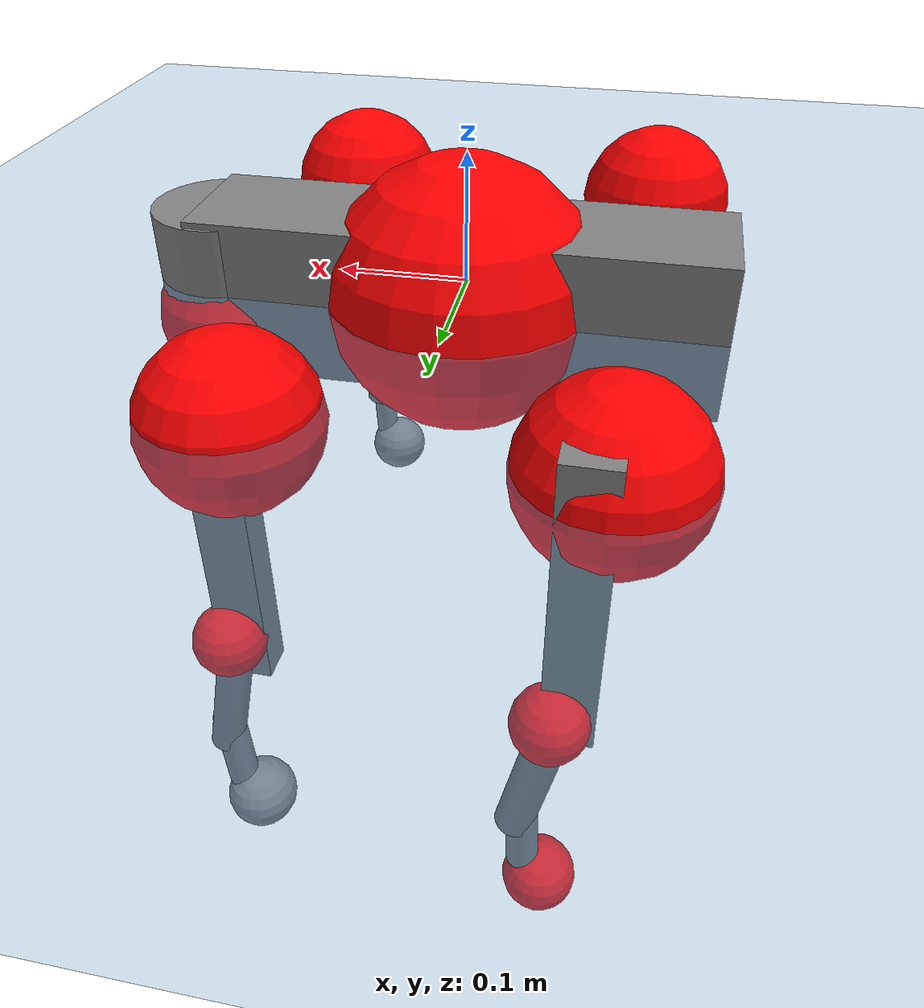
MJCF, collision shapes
<mujoco model="go2">
  <compiler angle="radian" assetdir="assets" balanceinertia="true" inertiafromgeom="false"/>

  <option timestep="0.005" density="1.2" viscosity="2e-05"/>

  <size nkey="1"/>

  <visual>
    <quality shadowsize="8192"/>
    <map shadowclip="0.5"/>
  </visual>

  <default>
    <default class="/">
      <geom contype="0" conaffinity="0" group="1" solref="-1000 -80"/>
      <site size="0.01 0.005 0.005" group="5"/>
      <general forcelimited="true" biastype="affine" gainprm="20" biasprm="0 -20 -0.5"/>
      <default class="go2">
        <joint armature="0.01" damping="0.01" frictionloss="0.2"/>
        <geom condim="1" margin="0.001"/>
        <default class="visual">
          <geom type="mesh" group="2"/>
        </default>
        <default class="collision">
          <geom group="3"/>
          <default class="foot">
            <geom size="0.022 0 0" condim="6" priority="1" friction="0.8 0.02 0.01" solimp="0.015 1 0.022"/>
          </default>
        </default>
        <default class="reward_collision_sphere">
          <geom group="5" rgba="1 0 0 1"/>
        </default>
      </default>
    </default>
  </default>

  <asset>
    <texture type="skybox" colorspace="auto" name="//unnamed_texture_0" builtin="gradient" rgb1="0.95 0.95 0.95" rgb2="0.95 0.95 0.95" width="100" height="600"/>
    <texture type="2d" colorspace="auto" name="texplane" builtin="checker" rgb1="0.345 0.575 0.748" rgb2="0.345 0.575 0.748" markrgb="1 1 1" width="512" height="512"/>
    <material name="MatPlane" class="/" texture="texplane" texuniform="true" texrepeat="2 2" specular="0.9"/>
    <material name="metal" class="/" rgba="0.9 0.95 0.95 1"/>
    <material name="black" class="/" rgba="0 0 0 1"/>
    <material name="white" class="/"/>
    <material name="gray" class="/" rgba="0.671705 0.692426 0.77427 1"/>
    <mesh name="base_0" class="/" file="base_0.obj"/>
    <mesh name="base_1" class="/" file="base_1.obj"/>
    <mesh name="base_2" class="/" file="base_2.obj"/>
    <mesh name="base_3" class="/" file="base_3.obj"/>
    <mesh name="base_4" class="/" file="base_4.obj"/>
    <mesh name="hip_0" class="/" file="hip_0.obj"/>
    <mesh name="hip_1" class="/" file="hip_1.obj"/>
    <mesh name="thigh_0" class="/" file="thigh_0.obj"/>
    <mesh name="thigh_1" class="/" file="thigh_1.obj"/>
    <mesh name="thigh_mirror_0" class="/" file="thigh_mirror_0.obj"/>
    <mesh name="thigh_mirror_1" class="/" file="thigh_mirror_1.obj"/>
    <mesh name="calf_0" class="/" file="calf_0.obj"/>
    <mesh name="calf_1" class="/" file="calf_1.obj"/>
    <mesh name="calf_mirror_0" class="/" file="calf_mirror_0.obj"/>
    <mesh name="calf_mirror_1" class="/" file="calf_mirror_1.obj"/>
    <mesh name="foot" class="/" file="foot.obj"/>
  </asset>

  <worldbody>
    <geom name="floor" class="/" size="100 100 0.125" type="plane" group="0" material="MatPlane"/>
    <light name="toplight_shadow" class="/" pos="0 0 5" dir="0.0990148 0.0990148 -0.990148" type="directional" ambient="0.04 0.04 0.04" diffuse="0.55 0.55 0.55" specular="0.12 0.12 0.12"/>
    <light name="toplight_fill" class="/" pos="0 0 5" dir="0.0990148 0.0990148 -0.990148" type="directional" castshadow="false" ambient="0.04 0.04 0.04" diffuse="0.3 0.3 0.3" specular="0.08 0.08 0.08"/>
    <body name="trunk" childclass="go2" pos="0.000439719 0.0129031 -0.00321821" quat="1 -3.30784e-05 0.000217249 -0.000130387">
      <inertial pos="0.00709323 0.0136581 -0.00213149" quat="-0.0847573 0.695737 -0.0148007 0.713125" mass="8.05114" diaginertia="0.0144298 1.60224 0.0074408"/>
      <joint name="//unnamed_joint_0" type="free" armature="0" damping="0" frictionloss="0"/>
      <geom name="//unnamed_geom_1" class="visual" material="black" mesh="base_0"/>
      <geom name="//unnamed_geom_2" class="visual" material="black" mesh="base_1"/>
      <geom name="//unnamed_geom_3" class="visual" material="black" mesh="base_2"/>
      <geom name="//unnamed_geom_4" class="visual" material="white" mesh="base_3"/>
      <geom name="//unnamed_geom_5" class="visual" material="gray" mesh="base_4"/>
      <geom name="trunk_1" class="collision" size="0.19713 0.0489942 0.0597363" type="box"/>
      <geom name="trunk_2" class="collision" size="0.0524003 0.0471602" pos="0.186634 0 0.00789464" type="cylinder"/>
      <geom name="trunk_3" class="collision" size="0.0492562" pos="0.191873 0 -0.0473678"/>
      <geom name="//unnamed_geom_9" class="reward_collision_sphere" size="0.104801"/>
      <geom name="//unnamed_geom_10" class="reward_collision_sphere" size="0.0628803" pos="0.18336 0 -0.0355259"/>
      <site name="imu" pos="-0.0795743 -0.0508903 0.0978447" size="0.0104801"/>
      <camera name="track" pos="0 -3.39939 0" quat="0.707107 0.707107 0 0" mode="trackcom"/>
      <camera name="ego_camera" pos="0.204315 0 0.0355259" quat="-0.5 -0.5 0.5 0.5"/>
      <body name="FL_hip" pos="0.115314 0.0619133 -0.0148444" quat="0.999978 0.00569956 0.00305861 -0.00163959">
        <inertial pos="0.000824877 0.00377641 -0.00944116" quat="0.485826 0.511791 0.501006 0.501035" mass="0.924001" diaginertia="0.000103978 0.00921457 0.000140519"/>
        <joint name="FL_hip_joint" pos="0 0 0" axis="0.999934 0.000324017 -0.0114438" range="-1.39603 0.852541" armature="0.0123736" damping="0.0727054" frictionloss="0.089321"/>
        <geom name="//unnamed_geom_11" class="visual" material="metal" mesh="hip_0"/>
        <geom name="//unnamed_geom_12" class="visual" material="gray" mesh="hip_1"/>
        <geom name="//unnamed_geom_13" class="collision" size="0.0482082 0.0209601" pos="0 0.135976 0" quat="0.707107 0.707107 0 0" type="cylinder"/>
        <geom name="//unnamed_geom_14" class="reward_collision_sphere" size="0.0628803" pos="0 0.118979 0"/>
        <body name="FL_thigh" pos="-0.000602264 0.145109 0.00514742" quat="0.999982 0.00312944 0.00461654 -0.00217838">
          <inertial pos="-0.0144175 -0.0485402 -0.0301964" quat="0.808954 0.141817 -0.054426 0.567907" mass="1.32186" diaginertia="0.00066593 0.0807033 0.000283613"/>
          <joint name="FL_thigh_joint" pos="0 0 0" axis="-0.0578191 0.997836 -0.0313246" range="-1.7517 3.1797" armature="0.00341372" damping="0" frictionloss="0.128634"/>
          <geom name="//unnamed_geom_15" class="visual" material="metal" mesh="thigh_0"/>
          <geom name="//unnamed_geom_16" class="visual" material="gray" mesh="thigh_1"/>
          <geom name="//unnamed_geom_17" class="collision" size="0.111613 0.0128381 0.0178161" pos="0 0 -0.0840779" quat="0.707107 0 0.707107 0" type="box"/>
          <body name="FL_calf" pos="0.00696833 0.0153935 -0.160437" quat="0.999988 -0.00228967 0.00313626 0.00293014">
            <inertial pos="-0.00707701 -0.000508592 -0.0949466" quat="0.709902 0.00135808 -0.00289487 0.704293" mass="0.289369" diaginertia="0.000206531 0.0165183 1.94758e-05"/>
            <joint name="FL_calf_joint" pos="0 0 0" axis="0.000476561 0.999978 -0.00664828" range="-2.39371 -0.8557" armature="0.0158813" damping="0.0144313" frictionloss="0.208204"/>
            <geom name="//unnamed_geom_18" class="visual" material="gray" mesh="calf_0"/>
            <geom name="//unnamed_geom_19" class="visual" material="black" mesh="calf_1"/>
            <geom name="FL_calf0" class="collision" size="0.0125761 0.0628803" pos="0.00523886 0 -0.0473678" quat="0.994493 0 -0.104807 0" type="cylinder"/>
            <geom name="//unnamed_geom_21" class="collision" size="0.0115281 0.0340602" pos="0.0130971 0 -0.116841" quat="0.999688 0 0.0249974 0" type="cylinder"/>
            <geom name="//unnamed_geom_22" class="visual" pos="0 0 -0.168156" quat="1 0 0 0" material="black" mesh="foot"/>
            <geom name="FL_foot" class="foot" size="0.0265184" pos="-0.00130971 0 -0.168156"/>
            <geom name="//unnamed_geom_24" class="reward_collision_sphere" size="0.0262001"/>
            <geom name="//unnamed_geom_25" class="reward_collision_sphere" size="0.0262001" pos="-0.00130971 0 -0.168156"/>
            <site name="FL_foot" class="foot" pos="-0.00130971 0 -0.168156" size="0.0104801"/>
          </body>
        </body>
      </body>
      <body name="FR_hip" pos="0.125719 -0.0699726 0.00835126" quat="1 9.96748e-05 -0.000814062 -0.000152274">
        <inertial pos="0.00405537 -0.00886789 -0.00583249" quat="0.489034 0.504017 0.507864 0.498886" mass="0.885704" diaginertia="0.000111046 0.00991013 0.000118046"/>
        <joint name="FR_hip_joint" pos="0 0 0" axis="0.99841 0.00710922 -0.0559252" stiffness="0.0366243" range="-1.03063 1.08399" armature="0.00740192" damping="0" frictionloss="0.131982"/>
        <geom name="//unnamed_geom_26" class="visual" pos="0 7.92956e-09 3.40115e-07" quat="4.63268e-05 1 0 0" material="metal" mesh="hip_0"/>
        <geom name="//unnamed_geom_27" class="visual" pos="0 1.28548e-08 -8.41234e-07" quat="4.63268e-05 1 0 0" material="gray" mesh="hip_1"/>
        <geom name="//unnamed_geom_28" class="collision" size="0.0482082 0.0209601" pos="0 -0.135976 0" quat="0.707107 0.707107 0 0" type="cylinder"/>
        <geom name="//unnamed_geom_29" class="reward_collision_sphere" size="0.0628803" pos="0 -0.118979 0"/>
        <body name="FR_thigh" pos="-0.0153765 -0.179251 -0.0119682" quat="0.999989 0.00208686 0.0016648 -0.00378003">
          <inertial pos="0.00683783 0.0548843 -0.0232189" quat="0.550047 -0.029934 0.0328647 0.83395" mass="0.933819" diaginertia="0.000571259 0.0684682 0.000245287"/>
          <joint name="FR_thigh_joint" pos="0 0 0" axis="0.00692699 -0.999956 0.00639431" stiffness="0.0378618" range="-3.17581 1.58187" armature="0.00860246" damping="0" frictionloss="0.216434"/>
          <geom name="//unnamed_geom_30" class="visual" material="metal" mesh="thigh_mirror_0"/>
          <geom name="//unnamed_geom_31" class="visual" material="gray" mesh="thigh_mirror_1"/>
          <geom name="//unnamed_geom_32" class="collision" size="0.111613 0.0128381 0.0178161" pos="0 0 -0.0840779" quat="0.707107 0 0.707107 0" type="box"/>
          <body name="FR_calf" pos="0.0159535 -0.00278732 -0.157434" quat="0.999975 0.00572326 -0.000100084 0.00424512">
            <inertial pos="-0.00361448 0.000867485 -0.123339" quat="0.72322 -0.0334769 0.0360998 0.68886" mass="0.26912" diaginertia="0.000168391 0.02092 1.50053e-05"/>
            <joint name="FR_calf_joint" pos="0 0 0" axis="-0.0619867 -0.996461 0.0567679" stiffness="0.0484973" range="0.751177 2.71189" armature="0.00302254" damping="0" frictionloss="0.357525"/>
            <geom name="//unnamed_geom_33" class="visual" material="gray" mesh="calf_mirror_0"/>
            <geom name="//unnamed_geom_34" class="visual" material="black" mesh="calf_mirror_1"/>
            <geom name="FR_calf0" class="collision" size="0.0136241 0.0628803" pos="0.00654857 0 -0.0473678" quat="0.995004 0 -0.0998334 0" type="cylinder"/>
            <geom name="//unnamed_geom_36" class="collision" size="0.0115281 0.0340602" pos="0.0130971 0 -0.116841" quat="0.999688 0 0.0249974 0" type="cylinder"/>
            <geom name="//unnamed_geom_37" class="visual" pos="0 0 -0.168156" quat="1 0 0 0" material="black" mesh="foot"/>
            <geom name="FR_foot" class="foot" size="0.0292779" pos="-0.00130971 0 -0.168156"/>
            <geom name="//unnamed_geom_39" class="reward_collision_sphere" size="0.0262001"/>
            <geom name="//unnamed_geom_40" class="reward_collision_sphere" size="0.0262001" pos="-0.00130971 0 -0.168156"/>
            <site name="FR_foot" class="foot" pos="-0.00130971 0 -0.168156" size="0.0104801"/>
          </body>
        </body>
      </body>
      <body name="RL_hip" pos="-0.130104 0.0830295 -0.00322878" quat="0.999993 -0.00304148 0.000884863 -0.00184639">
        <inertial pos="0.0028275 0.0169167 -0.00997818" quat="0.477832 0.505513 0.512849 0.503109" mass="0.641111" diaginertia="9.52334e-05 0.0075394 0.000132881"/>
        <joint name="RL_hip_joint" pos="0 0 0" axis="-0.998997 -0.042759 -0.0132718" stiffness="0.0296574" range="-1.1603 1.21211" armature="0.0099625" damping="0.00288502" frictionloss="0.156325"/>
        <geom name="//unnamed_geom_41" class="visual" pos="1.17264e-09 0 2.29864e-07" quat="4.63268e-05 0 1 0" material="metal" mesh="hip_0"/>
        <geom name="//unnamed_geom_42" class="visual" pos="1.90099e-09 0 2.03857e-07" quat="4.63268e-05 0 1 0" material="gray" mesh="hip_1"/>
        <geom name="//unnamed_geom_43" class="collision" size="0.0482082 0.0209601" pos="0 0.135976 0" quat="0.707107 0.707107 0 0" type="cylinder"/>
        <geom name="//unnamed_geom_44" class="reward_collision_sphere" size="0.0628803" pos="0 0.118979 0"/>
        <body name="RL_thigh" pos="0.0108435 0.160993 0.0160407" quat="0.999996 -0.00257198 -0.00087789 -7.24043e-06">
          <inertial pos="-0.00286456 -0.0346045 -0.00988375" quat="0.853015 0.105201 -0.0125747 0.511018" mass="0.938526" diaginertia="0.000697346 0.0670742 0.000253323"/>
          <joint name="RL_thigh_joint" pos="0 0 0" axis="-0.000519417 1 -0.000690487" stiffness="0.0145046" range="-0.266946 4.32081" armature="0.0142053" damping="0.0781777" frictionloss="0.244324"/>
          <geom name="//unnamed_geom_45" class="visual" material="metal" mesh="thigh_0"/>
          <geom name="//unnamed_geom_46" class="visual" material="gray" mesh="thigh_1"/>
          <geom name="//unnamed_geom_47" class="collision" size="0.111613 0.0128381 0.0178161" pos="0 0 -0.0840779" quat="0.707107 0 0.707107 0" type="box"/>
          <body name="RL_calf" pos="0.0105965 0.0172075 -0.173142" quat="0.999996 -0.00128848 -0.0026207 -7.46746e-05">
            <inertial pos="0.00730911 -0.00137755 -0.1075" quat="0.713585 0.0128928 -0.00453318 0.700435" mass="0.208599" diaginertia="0.000127635 0.0185602 1.41792e-05"/>
            <joint name="RL_calf_joint" pos="0 0 0" axis="0.041562 0.99834 0.03987" range="-3.05891 -0.584151" armature="0.00977336" damping="0.0551727" frictionloss="0.223304"/>
            <geom name="//unnamed_geom_48" class="visual" material="gray" mesh="calf_0"/>
            <geom name="//unnamed_geom_49" class="visual" material="black" mesh="calf_1"/>
            <geom name="RL_calf0" class="collision" size="0.0136241 0.0628803" pos="0.00654857 0 -0.0473678" quat="0.995004 0 -0.0998334 0" type="cylinder"/>
            <geom name="//unnamed_geom_51" class="collision" size="0.0115281 0.0340602" pos="0.0130971 0 -0.116841" quat="0.999688 0 0.0249974 0" type="cylinder"/>
            <geom name="//unnamed_geom_52" class="visual" pos="0 0 -0.168156" quat="1 0 0 0" material="black" mesh="foot"/>
            <geom name="RL_foot" class="foot" size="0.0163312" pos="-0.00130971 0 -0.168156"/>
            <geom name="//unnamed_geom_54" class="reward_collision_sphere" size="0.0262001"/>
            <geom name="//unnamed_geom_55" class="reward_collision_sphere" size="0.0262001" pos="-0.00130971 0 -0.168156"/>
            <site name="RL_foot" class="foot" pos="-0.00130971 0 -0.168156" size="0.0104801"/>
          </body>
        </body>
      </body>
      <body name="RR_hip" pos="-0.133581 -0.0751332 0.00672933" quat="0.999975 -0.00552951 -0.00324745 -0.0030554">
        <inertial pos="-0.00268743 -0.0173368 0.011217" quat="0.48601 0.48042 0.510204 0.52219" mass="0.661469" diaginertia="7.81949e-05 0.00665879 0.000103617"/>
        <joint name="RR_hip_joint" pos="0 0 0" axis="-0.997344 0.0653372 0.032183" range="-0.968537 1.35392" armature="0.010281" damping="0.0407595" frictionloss="0.172399"/>
        <geom name="//unnamed_geom_56" class="visual" pos="-1.13647e-09 7.92956e-09 -1.10251e-07" quat="2.14617e-09 4.63268e-05 4.63268e-05 -1" material="metal" mesh="hip_0"/>
        <geom name="//unnamed_geom_57" class="visual" pos="-1.99046e-09 1.28548e-08 1.04509e-06" quat="2.14617e-09 4.63268e-05 4.63268e-05 -1" material="gray" mesh="hip_1"/>
        <geom name="//unnamed_geom_58" class="collision" size="0.0482082 0.0209601" pos="0 -0.135976 0" quat="0.707107 0.707107 0 0" type="cylinder"/>
        <geom name="//unnamed_geom_59" class="reward_collision_sphere" size="0.0628803" pos="0 -0.118979 0"/>
        <body name="RR_thigh" pos="-0.000987842 -0.174273 -0.0102985" quat="0.999972 -0.00540088 0.00127606 -0.00497225">
          <inertial pos="-0.00226663 0.0529761 -0.0363052" quat="0.553873 -0.0361042 0.0627149 0.829451" mass="1.45813" diaginertia="0.000779451 0.0916112 0.000306564"/>
          <joint name="RR_thigh_joint" pos="0 0 0" axis="0.00967657 -0.996949 0.077455" stiffness="0.0382879" range="-4.6298 0.322586" armature="0.0115681" damping="0" frictionloss="0.158804"/>
          <geom name="//unnamed_geom_60" class="visual" material="metal" mesh="thigh_mirror_0"/>
          <geom name="//unnamed_geom_61" class="visual" material="gray" mesh="thigh_mirror_1"/>
          <geom name="//unnamed_geom_62" class="collision" size="0.111613 0.0128381 0.0178161" pos="0 0 -0.0840779" quat="0.707107 0 0.707107 0" type="box"/>
          <body name="RR_calf" pos="0.0179751 -0.00579874 -0.175224" quat="0.99999 -0.00345776 0.000676941 -0.00273013">
            <inertial pos="-0.0133576 0.00104947 -0.105109" quat="0.714248 -0.0198939 0.0339009 0.698788" mass="0.283141" diaginertia="0.000143324 0.0221714 1.50156e-05"/>
            <joint name="RR_calf_joint" pos="0 0 0" axis="0.0708946 -0.996914 0.0337192" stiffness="0.0476039" range="1.11719 2.41264" armature="0.0182143" damping="0.00705078" frictionloss="0.198841"/>
            <geom name="//unnamed_geom_63" class="visual" material="gray" mesh="calf_mirror_0"/>
            <geom name="//unnamed_geom_64" class="visual" material="black" mesh="calf_mirror_1"/>
            <geom name="RR_calf0" class="collision" size="0.0136241 0.0628803" pos="0.00654857 0 -0.0473678" quat="0.995004 0 -0.0998334 0" type="cylinder"/>
            <geom name="//unnamed_geom_66" class="collision" size="0.0115281 0.0340602" pos="0.0130971 0 -0.116841" quat="0.999688 0 0.0249974 0" type="cylinder"/>
            <geom name="//unnamed_geom_67" class="visual" pos="0 0 -0.168156" quat="1 0 0 0" material="black" mesh="foot"/>
            <geom name="RR_foot" class="foot" size="0.0318382" pos="-0.00130971 0 -0.168156"/>
            <geom name="//unnamed_geom_69" class="reward_collision_sphere" size="0.0262001"/>
            <geom name="//unnamed_geom_70" class="reward_collision_sphere" size="0.0262001" pos="-0.00130971 0 -0.168156"/>
            <site name="RR_foot" class="foot" pos="-0.00130971 0 -0.168156" size="0.0104801"/>
          </body>
        </body>
      </body>
    </body>
  </worldbody>

  <contact>
    <pair class="/" geom1="floor" geom2="FL_foot" name="//unnamed_contact_0"/>
    <pair class="/" geom1="floor" geom2="FR_foot" name="//unnamed_contact_1"/>
    <pair class="/" geom1="floor" geom2="RL_foot" name="//unnamed_contact_2"/>
    <pair class="/" geom1="floor" geom2="RR_foot" name="//unnamed_contact_3"/>
  </contact>

  <actuator>
    <general name="FL_hip" class="/" joint="FL_hip_joint" forcerange="-8.71056 8.71056" gainprm="12.772" biasprm="0 -12.772 -0.422875"/>
    <general name="FL_thigh" class="/" joint="FL_thigh_joint" forcerange="-35.5863 35.5863" gainprm="12.772" biasprm="0 -12.772 -0.422875"/>
    <general name="FL_calf" class="/" joint="FL_calf_joint" forcerange="-59.741 59.741" gainprm="12.772" biasprm="0 -12.772 -0.422875"/>
    <general name="FR_hip" class="/" joint="FR_hip_joint" forcerange="-10.2721 10.2721" gainprm="12.772" biasprm="0 -12.772 -0.422875"/>
    <general name="FR_thigh" class="/" joint="FR_thigh_joint" forcerange="-10.2392 10.2392" gainprm="12.772" biasprm="0 -12.772 -0.422875"/>
    <general name="FR_calf" class="/" joint="FR_calf_joint" forcerange="-27.3585 27.3585" gainprm="12.772" biasprm="0 -12.772 -0.422875"/>
    <general name="RL_hip" class="/" joint="RL_hip_joint" forcerange="-30.1448 30.1448" gainprm="12.772" biasprm="0 -12.772 -0.422875"/>
    <general name="RL_thigh" class="/" joint="RL_thigh_joint" forcerange="-21.2276 21.2276" gainprm="12.772" biasprm="0 -12.772 -0.422875"/>
    <general name="RL_calf" class="/" joint="RL_calf_joint" forcerange="-66.2122 66.2122" gainprm="12.772" biasprm="0 -12.772 -0.422875"/>
    <general name="RR_hip" class="/" joint="RR_hip_joint" forcerange="-40.1509 40.1509" gainprm="12.772" biasprm="0 -12.772 -0.422875"/>
    <general name="RR_thigh" class="/" joint="RR_thigh_joint" forcerange="-28.6335 28.6335" gainprm="12.772" biasprm="0 -12.772 -0.422875"/>
    <general name="RR_calf" class="/" joint="RR_calf_joint" forcerange="-49.1182 49.1182" gainprm="12.772" biasprm="0 -12.772 -0.422875"/>
  </actuator>

  <sensor>
    <gyro site="imu" name="imu_angular_velocity"/>
    <velocimeter site="imu" name="imu_linear_velocity"/>
    <framelinvel objtype="site" objname="FL_foot" name="FL_foot_global_linear_velocity"/>
    <framelinvel objtype="site" objname="FR_foot" name="FR_foot_global_linear_velocity"/>
    <framelinvel objtype="site" objname="RL_foot" name="RL_foot_global_linear_velocity"/>
    <framelinvel objtype="site" objname="RR_foot" name="RR_foot_global_linear_velocity"/>
  </sensor>

  <keyframe>
    <key name="home" qpos="0 0 0.325 1 0 0 0 0.1 0.8 -1.5 -0.1 -0.8 1.5 -0.1 0.8 -1.5 0.1 -0.8 1.5"/>
  </keyframe>
</mujoco>
